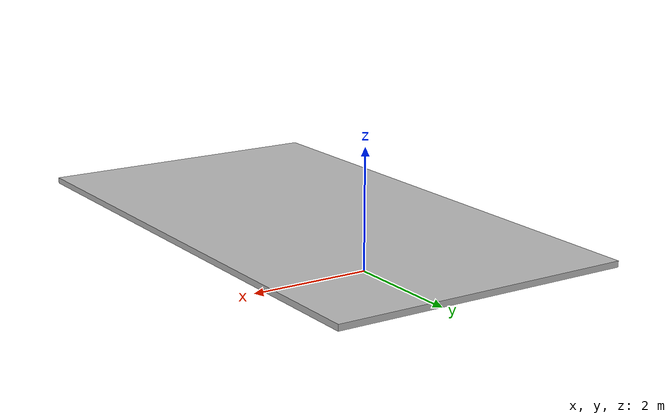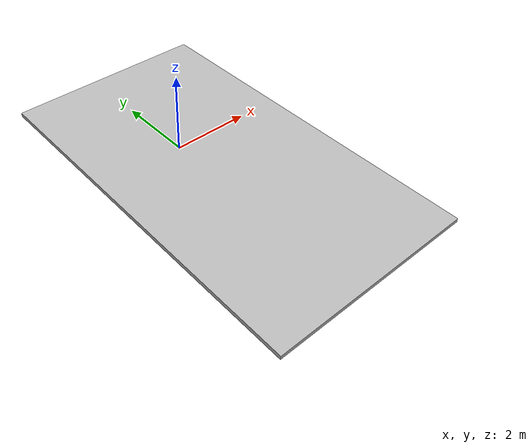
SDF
<?xml version="1.0" ?>
<sdf version="1.6">
  <model name="floor_image">
    <pose>0 0 0.5 0 0 0</pose>
    <link name="box">
      <pose>0 -1.5 0 0 0 0</pose>
      <collision name="collision">
        <geometry>
          <box>
            <size>5 9 0.1</size>
          </box>
        </geometry>
      </collision>
      <visual name="visual">
        <geometry>
          <box>
            <size>5 9 0.1</size>
          </box>
        </geometry>
        <material>
          <script>
            <uri>model://floor/materials/scripts</uri>
            <uri>model://floor/materials/textures</uri>
            <name>TexturedFloor/Image</name>
          </script>
        </material>
      </visual>
    </link>
  </model>
</sdf>
